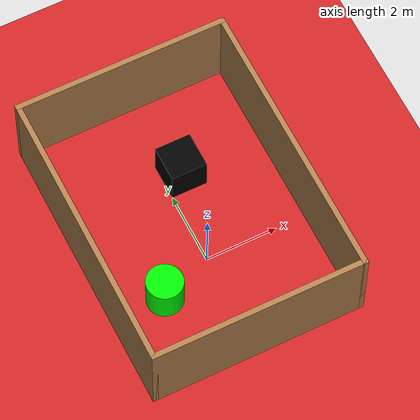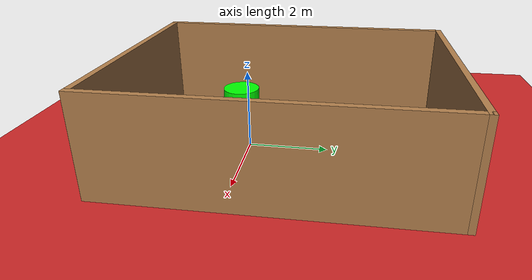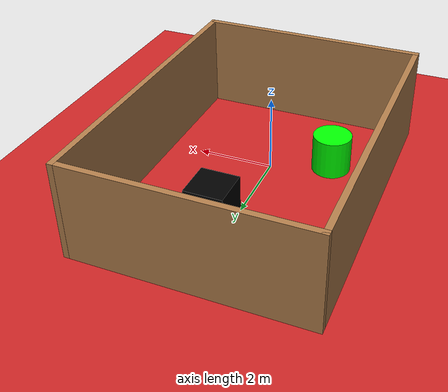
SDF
<sdf version="1.7">
 <world name="test_world">
  <model name="ground_plane">
   <static>1</static>
   <link name="link">
    <collision name="collision">
     <geometry><plane><normal>0 0 1</normal><size>100 100</size></plane></geometry>
    </collision>
    <visual name="visual">
     <geometry><plane><normal>0 0 1</normal><size>100 100</size></plane></geometry>
     <material>
      <script><uri>file://media/materials/scripts/gazebo.material</uri><name>Gazebo/Checkered</name></script>
     </material>
    </visual>
   </link>
  </model>
  <model name="cylinder_model">
   <pose>-1.4787 -0.543435 0.509478 0 -0 0</pose>
   <static>1</static>
   <link name="link">
    <collision name="collision">
     <geometry><cylinder><radius>0.5</radius><length>1</length></cylinder></geometry>
    </collision>
    <visual name="visual">
     <geometry><cylinder><radius>0.5</radius><length>1</length></cylinder></geometry>
     <material><ambient>0 1 0 1</ambient></material>
    </visual>
   </link>
  </model>
  <gravity>0 0 -9.8</gravity>
  <magnetic_field>6e-06 2.3e-05 -4.2e-05</magnetic_field>
  <atmosphere type="adiabatic"/>
  <physics type="ode">
   <max_step_size>0.001</max_step_size>
   <real_time_factor>1</real_time_factor>
   <real_time_update_rate>1000</real_time_update_rate>
  </physics>
  <scene><ambient>0.4 0.4 0.4 1</ambient><background>0.7 0.7 0.7 1</background><shadows>1</shadows></scene>
  <spherical_coordinates>
   <surface_model>EARTH_WGS84</surface_model>
   <latitude_deg>0</latitude_deg>
   <longitude_deg>0</longitude_deg>
   <elevation>0</elevation>
   <heading_deg>0</heading_deg>
  </spherical_coordinates>
  <model name="box_model_red">
   <link name="link">
    <inertial>
     <mass>1</mass>
     <inertia><ixx>1</ixx><ixy>0</ixy><ixz>0</ixz><iyy>1</iyy><iyz>0</iyz><izz>1</izz></inertia>
    </inertial>
    <visual name="visual">
     <geometry><box><size>1 1 1</size></box></geometry>
     <material>
      <diffuse>0 0 0 1</diffuse>
      <shader type="pixel"><normal_map>__default__</normal_map></shader>
      <script><name>ModelPreview_5::link::visual_MATERIAL_</name><uri>__default__</uri></script>
      <ambient>1 0 0 1</ambient>
      <specular>0 0 0 1</specular>
      <emissive>0 0 0 1</emissive>
     </material>
    </visual>
    <collision name="collision">
     <geometry><box><size>1 1 1</size></box></geometry>
     <surface>
      <friction>
       <ode><mu>1</mu><mu2>1</mu2><fdir1>0 0 0</fdir1><slip1>0</slip1><slip2>0</slip2></ode>
       <torsional>
        <coefficient>1</coefficient>
        <patch_radius>0</patch_radius>
        <surface_radius>0</surface_radius>
        <use_patch_radius>1</use_patch_radius>
        <ode><slip>0</slip></ode>
       </torsional>
      </friction>
      <bounce><restitution_coefficient>0</restitution_coefficient><threshold>1e+06</threshold></bounce>
      <contact>
       <collide_without_contact>0</collide_without_contact>
       <collide_without_contact_bitmask>1</collide_without_contact_bitmask>
       <collide_bitmask>1</collide_bitmask>
       <ode>
        <soft_cfm>0</soft_cfm>
        <soft_erp>0.2</soft_erp>
        <kp>1e+13</kp>
        <kd>1</kd>
        <max_vel>0.01</max_vel>
        <min_depth>0</min_depth>
       </ode>
       <bullet>
        <split_impulse>1</split_impulse>
        <split_impulse_penetration_threshold>-0.01</split_impulse_penetration_threshold>
        <soft_cfm>0</soft_cfm>
        <soft_erp>0.2</soft_erp>
        <kp>1e+13</kp>
        <kd>1</kd>
       </bullet>
      </contact>
     </surface>
    </collision>
   </link>
   <static>1</static>
   <pose>0.495765 2.51871 0.506258 0 -0 0</pose>
  </model>
  <model name="boundary_wood">
   <pose>-0.045083 1.00747 0 0 -0 0</pose>
   <link name="Wall_5">
    <collision name="Wall_5_Collision">
     <geometry><box><size>8 0.15 2.5</size></box></geometry>
     <pose>0 0 1.25 0 -0 0</pose>
    </collision>
    <visual name="Wall_5_Visual">
     <pose>0 0 1.25 0 -0 0</pose>
     <geometry><box><size>8 0.15 2.5</size></box></geometry>
     <material>
      <script><uri>file://media/materials/scripts/gazebo.material</uri><name>Gazebo/Wood</name></script>
      <ambient>1 1 1 1</ambient>
     </material>
     <meta><layer>0</layer></meta>
    </visual>
    <pose>-2.90067 0 0 0 -0 -1.5708</pose>
   </link>
   <link name="Wall_7">
    <collision name="Wall_7_Collision">
     <geometry><box><size>6 0.15 2.5</size></box></geometry>
     <pose>0 0 1.25 0 -0 0</pose>
    </collision>
    <visual name="Wall_7_Visual">
     <pose>0 0 1.25 0 -0 0</pose>
     <geometry><box><size>6 0.15 2.5</size></box></geometry>
     <material>
      <script><uri>file://media/materials/scripts/gazebo.material</uri><name>Gazebo/Wood</name></script>
      <ambient>1 1 1 1</ambient>
     </material>
     <meta><layer>0</layer></meta>
    </visual>
    <pose>0.024326 -3.925 0 0 -0 0</pose>
   </link>
   <link name="Wall_8">
    <collision name="Wall_8_Collision">
     <geometry><box><size>8 0.15 2.5</size></box></geometry>
     <pose>0 0 1.25 0 -0 0</pose>
    </collision>
    <visual name="Wall_8_Visual">
     <pose>0 0 1.25 0 -0 0</pose>
     <geometry><box><size>8 0.15 2.5</size></box></geometry>
     <material>
      <script><uri>file://media/materials/scripts/gazebo.material</uri><name>Gazebo/Wood</name></script>
      <ambient>1 1 1 1</ambient>
     </material>
     <meta><layer>0</layer></meta>
    </visual>
    <pose>2.94933 0 0 0 -0 1.5708</pose>
   </link>
   <link name="Wall_9">
    <collision name="Wall_9_Collision">
     <geometry><box><size>6 0.15 2.5</size></box></geometry>
     <pose>0 0 1.25 0 -0 0</pose>
    </collision>
    <visual name="Wall_9_Visual">
     <pose>0 0 1.25 0 -0 0</pose>
     <geometry><box><size>6 0.15 2.5</size></box></geometry>
     <material>
      <script><uri>file://media/materials/scripts/gazebo.material</uri><name>Gazebo/Wood</name></script>
      <ambient>1 1 1 1</ambient>
     </material>
     <meta><layer>0</layer></meta>
    </visual>
    <pose>0.024326 3.925 0 0 -0 3.14159</pose>
   </link>
   <static>1</static>
  </model>
  <plugin name="gazebo_occupancy_map" filename="libgazebo_2Dmap_plugin.so">
   <map_resolution>0.1</map_resolution>
   <map_height>0.3</map_height>
   <map_size_x>10</map_size_x>
   <map_size_y>10</map_size_y>
   <init_robot_x>0</init_robot_x>
   <init_robot_y>0</init_robot_y>
  </plugin>
 </world>
</sdf>
